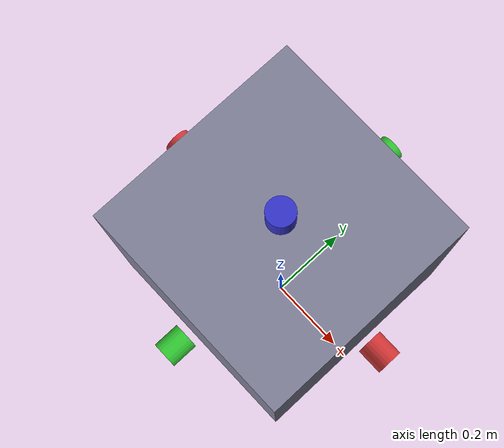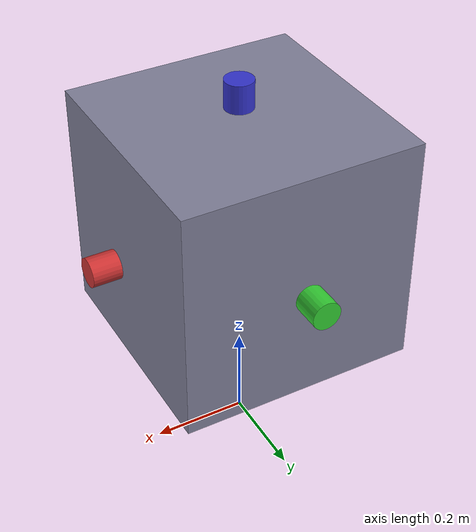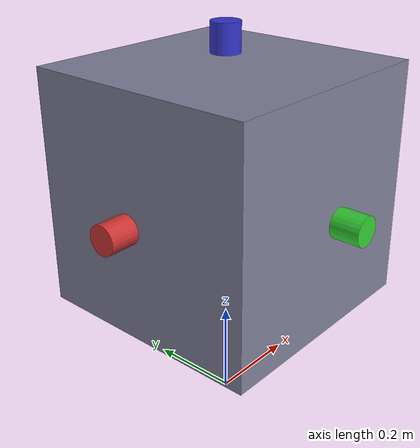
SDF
<?xml version="1.0"?>
<sdf version="1.9">
  <world name="leo_world">
    <!-- Microgravity approximation: near-zero gravity -->
  <gravity>0 0 0</gravity>

    <atmosphere type="adiabatic"/>
    <wind>
      <linear_velocity>0 0 0</linear_velocity>
    </wind>

    <physics name="default_physics" type="ode">
      <max_step_size>0.001</max_step_size>
      <real_time_factor>1.0</real_time_factor>
      <real_time_update_rate>1000</real_time_update_rate>
      <ode>
        <solver>
          <type>quick</type>
          <iters>50</iters>
          <sor>1.3</sor>
        </solver>
        <constraints>
          <cfm>0.0</cfm>
          <erp>0.2</erp>
          <contact_max_correcting_vel>100.0</contact_max_correcting_vel>
          <contact_surface_layer>0.001</contact_surface_layer>
        </constraints>
      </ode>
    </physics>

    <!-- Dark space-like background -->
    <scene>
      <!-- Brighter ambient for visibility -->
      <ambient>0.2 0.2 0.22 1</ambient>
      <background>0.0 0.0 0.0 1</background>
      <shadows>false</shadows>
    </scene>

    <!-- Built-in directional light for visibility (no external model needed) -->
    <light name="key_light" type="directional">
      <cast_shadows>false</cast_shadows>
      <pose>0 0 5 0.5 0 0</pose>
      <diffuse>0.9 0.9 0.95 1</diffuse>
      <specular>0.1 0.1 0.1 1</specular>
      <attenuation>
        <range>100</range>
        <constant>1.0</constant>
        <linear>0.0</linear>
        <quadratic>0.0</quadratic>
      </attenuation>
      <direction>-0.3 -0.2 -1</direction>
    </light>

    <!-- Fill light from the opposite side -->
    <light name="fill_light" type="directional">
      <cast_shadows>false</cast_shadows>
      <pose>0 0 3 0 0 0</pose>
      <diffuse>0.4 0.4 0.45 1</diffuse>
      <specular>0.05 0.05 0.05 1</specular>
      <attenuation>
        <range>100</range>
        <constant>1.0</constant>
        <linear>0.0</linear>
        <quadratic>0.0</quadratic>
      </attenuation>
      <direction>0.3 0.2 -0.6</direction>
    </light>

    <!-- Gentle point light near the satellite -->
    <light name="point_glow" type="point">
      <cast_shadows>false</cast_shadows>
      <pose>0 0 1.2 0 0 0</pose>
      <diffuse>0.3 0.3 0.35 1</diffuse>
      <specular>0.0 0.0 0.0 0</specular>
      <attenuation>
        <range>5</range>
        <constant>0.5</constant>
        <linear>0.1</linear>
        <quadratic>0.02</quadratic>
      </attenuation>
    </light>

    <!-- Add the training satellite directly via absolute file path -->
    <include>
      <uri>file:///Users/dganjali/GitHub/JADE-SpaceApps/gazebo/models/satellite/model.sdf</uri>
      <pose>0 0 0.5 0 0 0</pose>
    </include>

  </world>
</sdf>

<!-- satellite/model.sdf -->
<sdf version="1.9">
  <model name="training_satellite">
    <pose>0 0 0.5 0 0 0</pose>

  <link name="base_link">
      <inertial>
        <pose>0 0 0 0 0 0</pose>
        <mass>10.0</mass>
        <inertia>
          <ixx>0.25</ixx>
          <ixy>0</ixy>
          <ixz>0</ixz>
          <iyy>0.25</iyy>
          <iyz>0</iyz>
          <izz>0.25</izz>
        </inertia>
      </inertial>

      <collision name="collision">
        <geometry>
          <box>
            <size>0.5 0.5 0.5</size>
          </box>
        </geometry>
        <surface>
          <contact>
            <ode/>
          </contact>
        </surface>
      </collision>

      <visual name="visual">
        <geometry>
          <box>
            <size>0.5 0.5 0.5</size>
          </box>
        </geometry>
        <material>
          <ambient>0.2 0.2 0.25 1</ambient>
          <diffuse>0.5 0.5 0.6 1</diffuse>
          <specular>0.1 0.1 0.1 1</specular>
          <emissive>0.05 0.05 0.06 1</emissive>
        </material>
      </visual>

      <!-- IMU sensor on the body -->
      <sensor name="imu" type="imu">
        <always_on>true</always_on>
        <update_rate>100</update_rate>
        <topic>imu</topic>
        <imu>
          <angular_velocity>
            <x>
              <noise type="gaussian">
                <mean>0</mean>
                <stddev>0.0005</stddev>
              </noise>
            </x>
            <y>
              <noise type="gaussian">
                <mean>0</mean>
                <stddev>0.0005</stddev>
              </noise>
            </y>
            <z>
              <noise type="gaussian">
                <mean>0</mean>
                <stddev>0.0005</stddev>
              </noise>
            </z>
          </angular_velocity>
          <linear_acceleration>
            <x>
              <noise type="gaussian">
                <mean>0</mean>
                <stddev>0.0005</stddev>
              </noise>
            </x>
            <y>
              <noise type="gaussian">
                <mean>0</mean>
                <stddev>0.0005</stddev>
              </noise>
            </y>
            <z>
              <noise type="gaussian">
                <mean>0</mean>
                <stddev>0.0005</stddev>
              </noise>
            </z>
          </linear_acceleration>
        </imu>
      </sensor>
    </link>

    <!-- Thruster frames: 6 axis-aligned (+X, -X, +Y, -Y, +Z, -Z)
         Convention: thrust direction is the +Z axis of each thruster link. -->
    <link name="thruster_px">
      <inertial>
        <mass>0.01</mass>
        <inertia>
          <ixx>1e-5</ixx><ixy>0</ixy><ixz>0</ixz>
          <iyy>1e-5</iyy><iyz>0</iyz>
          <izz>1e-5</izz>
        </inertia>
      </inertial>
      <!-- Rotate so +Z aligns with +X (pitch -90 deg) -->
      <pose>0.3 0 0 0 -1.5708 0</pose>
      <visual name="v">
        <geometry><cylinder><radius>0.03</radius><length>0.06</length></cylinder></geometry>
        <material>
          <diffuse>0.8 0.2 0.2 1</diffuse>
          <emissive>0.05 0.01 0.01 1</emissive>
        </material>
      </visual>
    </link>
    <joint name="thruster_px_joint" type="fixed">
      <parent>base_link</parent>
      <child>thruster_px</child>
    </joint>

    <link name="thruster_nx">
      <inertial>
        <mass>0.01</mass>
        <inertia>
          <ixx>1e-5</ixx><ixy>0</ixy><ixz>0</ixz>
          <iyy>1e-5</iyy><iyz>0</iyz>
          <izz>1e-5</izz>
        </inertia>
      </inertial>
      <!-- Rotate so +Z aligns with -X (pitch +90 deg) -->
      <pose>-0.3 0 0 0 1.5708 0</pose>
      <visual name="v">
        <geometry><cylinder><radius>0.03</radius><length>0.06</length></cylinder></geometry>
        <material>
          <diffuse>0.8 0.2 0.2 1</diffuse>
          <emissive>0.05 0.01 0.01 1</emissive>
        </material>
      </visual>
    </link>
    <joint name="thruster_nx_joint" type="fixed">
      <parent>base_link</parent>
      <child>thruster_nx</child>
    </joint>

    <link name="thruster_py">
      <inertial>
        <mass>0.01</mass>
        <inertia>
          <ixx>1e-5</ixx><ixy>0</ixy><ixz>0</ixz>
          <iyy>1e-5</iyy><iyz>0</iyz>
          <izz>1e-5</izz>
        </inertia>
      </inertial>
      <!-- Rotate so +Z aligns with +Y (roll +90 deg) -->
      <pose>0 0.3 0 1.5708 0 0</pose>
      <visual name="v">
        <geometry><cylinder><radius>0.03</radius><length>0.06</length></cylinder></geometry>
        <material>
          <diffuse>0.2 0.8 0.2 1</diffuse>
          <emissive>0.01 0.05 0.01 1</emissive>
        </material>
      </visual>
    </link>
    <joint name="thruster_py_joint" type="fixed">
      <parent>base_link</parent>
      <child>thruster_py</child>
    </joint>

    <link name="thruster_ny">
      <inertial>
        <mass>0.01</mass>
        <inertia>
          <ixx>1e-5</ixx><ixy>0</ixy><ixz>0</ixz>
          <iyy>1e-5</iyy><iyz>0</iyz>
          <izz>1e-5</izz>
        </inertia>
      </inertial>
      <!-- Rotate so +Z aligns with -Y (roll -90 deg) -->
      <pose>0 -0.3 0 -1.5708 0 0</pose>
      <visual name="v">
        <geometry><cylinder><radius>0.03</radius><length>0.06</length></cylinder></geometry>
        <material>
          <diffuse>0.2 0.8 0.2 1</diffuse>
          <emissive>0.01 0.05 0.01 1</emissive>
        </material>
      </visual>
    </link>
    <joint name="thruster_ny_joint" type="fixed">
      <parent>base_link</parent>
      <child>thruster_ny</child>
    </joint>

    <link name="thruster_pz">
      <inertial>
        <mass>0.01</mass>
        <inertia>
          <ixx>1e-5</ixx><ixy>0</ixy><ixz>0</ixz>
          <iyy>1e-5</iyy><iyz>0</iyz>
          <izz>1e-5</izz>
        </inertia>
      </inertial>
      <!-- +Z already aligns with +Z (no rotation) -->
      <pose>0 0 0.3 0 0 0</pose>
      <visual name="v">
        <geometry><cylinder><radius>0.03</radius><length>0.06</length></cylinder></geometry>
        <material>
          <diffuse>0.2 0.2 0.8 1</diffuse>
          <emissive>0.01 0.01 0.05 1</emissive>
        </material>
      </visual>
    </link>
    <joint name="thruster_pz_joint" type="fixed">
      <parent>base_link</parent>
      <child>thruster_pz</child>
    </joint>

    <link name="thruster_nz">
      <inertial>
        <mass>0.01</mass>
        <inertia>
          <ixx>1e-5</ixx><ixy>0</ixy><ixz>0</ixz>
          <iyy>1e-5</iyy><iyz>0</iyz>
          <izz>1e-5</izz>
        </inertia>
      </inertial>
      <!-- Rotate so +Z aligns with -Z (roll 180 deg) -->
      <pose>0 0 -0.3 3.14159 0 0</pose>
      <visual name="v">
        <geometry><cylinder><radius>0.03</radius><length>0.06</length></cylinder></geometry>
        <material>
          <diffuse>0.2 0.2 0.8 1</diffuse>
          <emissive>0.01 0.01 0.05 1</emissive>
        </material>
      </visual>
    </link>
    <joint name="thruster_nz_joint" type="fixed">
      <parent>base_link</parent>
      <child>thruster_nz</child>
    </joint>

    <allow_auto_disable>false</allow_auto_disable>
    <static>false</static>

  </model>
</sdf>
